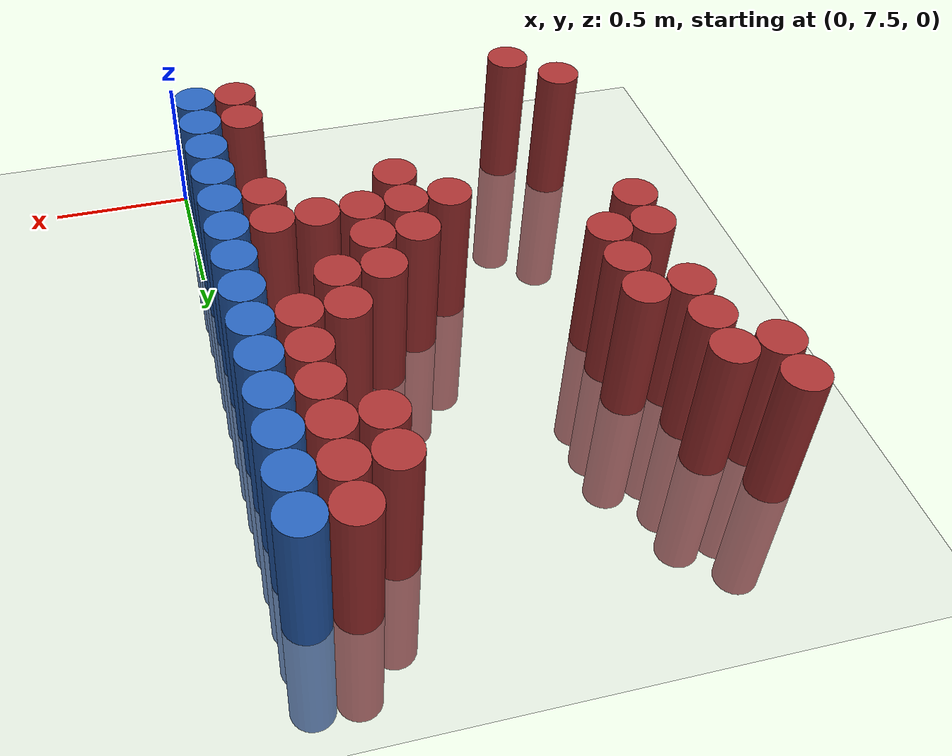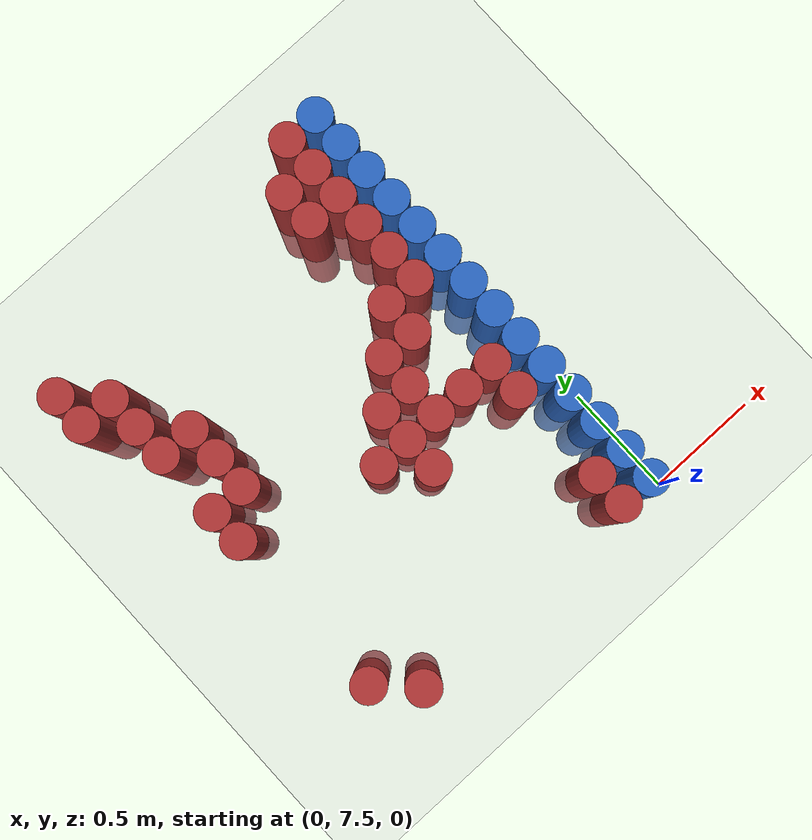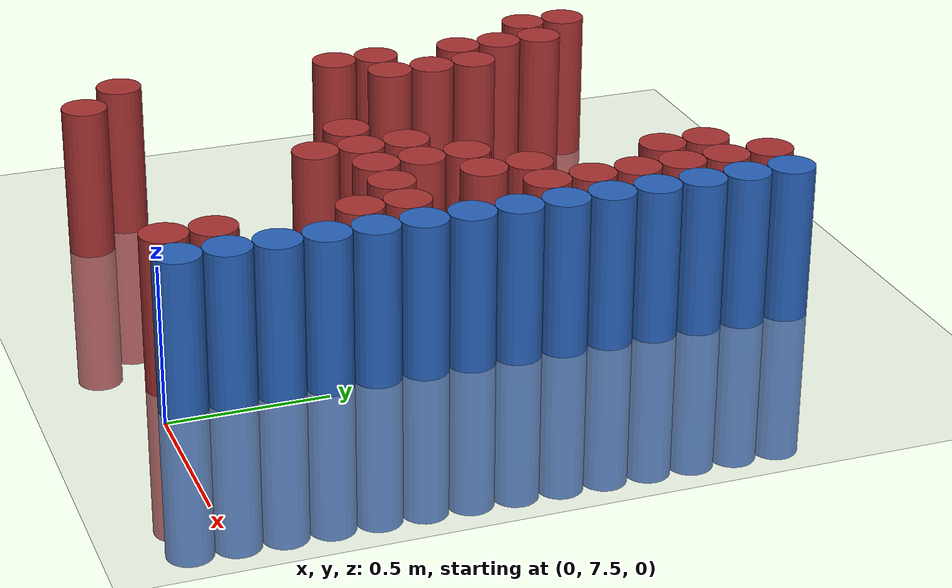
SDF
<sdf version="1.6">
 <world name="default">
  <model name="ground_plane">
   <static>1</static>
   <link name="link">
    <collision name="collision">
     <geometry><plane><normal>0 0 1</normal><size>100 100</size></plane></geometry>
     <surface><friction><ode><mu>100</mu><mu2>50</mu2></ode></friction></surface>
    </collision>
    <visual name="visual">
     <cast_shadows>0</cast_shadows>
     <geometry><plane><normal>0 0 1</normal><size>100 100</size></plane></geometry>
     <material>
      <script><uri>file://media/materials/scripts/gazebo.material</uri><name>Gazebo/Grey</name></script>
     </material>
    </visual>
   </link>
  </model>
  <model name="unit_cylinder_221">
   <static>1</static>
   <pose>-1.575000 9.225000 0.000000 0.000000 0.000000 0.000000</pose>
   <link name="link">
    <inertial>
     <mass>1</mass>
     <inertia><ixx>0.145833</ixx><ixy>0</ixy><ixz>0</ixz><iyy>0.145833</iyy><iyz>0</iyz><izz>0.125</izz></inertia>
    </inertial>
    <collision name="collision">
     <geometry><cylinder><radius>0.075000</radius><length>1</length></cylinder></geometry>
    </collision>
    <visual name="visual">
     <geometry><cylinder><radius>0.075000</radius><length>1</length></cylinder></geometry>
     <material>
      <ambient>0.648000 0.192000 0.192000 1</ambient>
      <diffuse>0.648000 0.192000 0.192000 1</diffuse>
     </material>
     <material>
      <script><name>Gazebo/Grey</name><uri>file://media/materials/scripts/gazebo.material</uri></script>
     </material>
    </visual>
   </link>
  </model>
  <model name="unit_cylinder_222">
   <static>1</static>
   <pose>-1.575000 9.375000 0.000000 0.000000 0.000000 0.000000</pose>
   <link name="link">
    <inertial>
     <mass>1</mass>
     <inertia><ixx>0.145833</ixx><ixy>0</ixy><ixz>0</ixz><iyy>0.145833</iyy><iyz>0</iyz><izz>0.125</izz></inertia>
    </inertial>
    <collision name="collision">
     <geometry><cylinder><radius>0.075000</radius><length>1</length></cylinder></geometry>
    </collision>
    <visual name="visual">
     <geometry><cylinder><radius>0.075000</radius><length>1</length></cylinder></geometry>
     <material>
      <ambient>0.648000 0.192000 0.192000 1</ambient>
      <diffuse>0.648000 0.192000 0.192000 1</diffuse>
     </material>
     <material>
      <script><name>Gazebo/Grey</name><uri>file://media/materials/scripts/gazebo.material</uri></script>
     </material>
    </visual>
   </link>
  </model>
  <model name="unit_cylinder_229">
   <static>1</static>
   <pose>-1.425000 7.725000 0.000000 0.000000 0.000000 0.000000</pose>
   <link name="link">
    <inertial>
     <mass>1</mass>
     <inertia><ixx>0.145833</ixx><ixy>0</ixy><ixz>0</ixz><iyy>0.145833</iyy><iyz>0</iyz><izz>0.125</izz></inertia>
    </inertial>
    <collision name="collision">
     <geometry><cylinder><radius>0.075000</radius><length>1</length></cylinder></geometry>
    </collision>
    <visual name="visual">
     <geometry><cylinder><radius>0.075000</radius><length>1</length></cylinder></geometry>
     <material>
      <ambient>0.648000 0.192000 0.192000 1</ambient>
      <diffuse>0.648000 0.192000 0.192000 1</diffuse>
     </material>
     <material>
      <script><name>Gazebo/Grey</name><uri>file://media/materials/scripts/gazebo.material</uri></script>
     </material>
    </visual>
   </link>
  </model>
  <model name="unit_cylinder_230">
   <static>1</static>
   <pose>-1.425000 8.475000 0.000000 0.000000 0.000000 0.000000</pose>
   <link name="link">
    <inertial>
     <mass>1</mass>
     <inertia><ixx>0.145833</ixx><ixy>0</ixy><ixz>0</ixz><iyy>0.145833</iyy><iyz>0</iyz><izz>0.125</izz></inertia>
    </inertial>
    <collision name="collision">
     <geometry><cylinder><radius>0.075000</radius><length>1</length></cylinder></geometry>
    </collision>
    <visual name="visual">
     <geometry><cylinder><radius>0.075000</radius><length>1</length></cylinder></geometry>
     <material>
      <ambient>0.648000 0.192000 0.192000 1</ambient>
      <diffuse>0.648000 0.192000 0.192000 1</diffuse>
     </material>
     <material>
      <script><name>Gazebo/Grey</name><uri>file://media/materials/scripts/gazebo.material</uri></script>
     </material>
    </visual>
   </link>
  </model>
  <model name="unit_cylinder_231">
   <static>1</static>
   <pose>-1.425000 8.625000 0.000000 0.000000 0.000000 0.000000</pose>
   <link name="link">
    <inertial>
     <mass>1</mass>
     <inertia><ixx>0.145833</ixx><ixy>0</ixy><ixz>0</ixz><iyy>0.145833</iyy><iyz>0</iyz><izz>0.125</izz></inertia>
    </inertial>
    <collision name="collision">
     <geometry><cylinder><radius>0.075000</radius><length>1</length></cylinder></geometry>
    </collision>
    <visual name="visual">
     <geometry><cylinder><radius>0.075000</radius><length>1</length></cylinder></geometry>
     <material>
      <ambient>0.648000 0.192000 0.192000 1</ambient>
      <diffuse>0.648000 0.192000 0.192000 1</diffuse>
     </material>
     <material>
      <script><name>Gazebo/Grey</name><uri>file://media/materials/scripts/gazebo.material</uri></script>
     </material>
    </visual>
   </link>
  </model>
  <model name="unit_cylinder_232">
   <static>1</static>
   <pose>-1.425000 8.925000 0.000000 0.000000 0.000000 0.000000</pose>
   <link name="link">
    <inertial>
     <mass>1</mass>
     <inertia><ixx>0.145833</ixx><ixy>0</ixy><ixz>0</ixz><iyy>0.145833</iyy><iyz>0</iyz><izz>0.125</izz></inertia>
    </inertial>
    <collision name="collision">
     <geometry><cylinder><radius>0.075000</radius><length>1</length></cylinder></geometry>
    </collision>
    <visual name="visual">
     <geometry><cylinder><radius>0.075000</radius><length>1</length></cylinder></geometry>
     <material>
      <ambient>0.648000 0.192000 0.192000 1</ambient>
      <diffuse>0.648000 0.192000 0.192000 1</diffuse>
     </material>
     <material>
      <script><name>Gazebo/Grey</name><uri>file://media/materials/scripts/gazebo.material</uri></script>
     </material>
    </visual>
   </link>
  </model>
  <model name="unit_cylinder_233">
   <static>1</static>
   <pose>-1.425000 9.075000 0.000000 0.000000 0.000000 0.000000</pose>
   <link name="link">
    <inertial>
     <mass>1</mass>
     <inertia><ixx>0.145833</ixx><ixy>0</ixy><ixz>0</ixz><iyy>0.145833</iyy><iyz>0</iyz><izz>0.125</izz></inertia>
    </inertial>
    <collision name="collision">
     <geometry><cylinder><radius>0.075000</radius><length>1</length></cylinder></geometry>
    </collision>
    <visual name="visual">
     <geometry><cylinder><radius>0.075000</radius><length>1</length></cylinder></geometry>
     <material>
      <ambient>0.648000 0.192000 0.192000 1</ambient>
      <diffuse>0.648000 0.192000 0.192000 1</diffuse>
     </material>
     <material>
      <script><name>Gazebo/Grey</name><uri>file://media/materials/scripts/gazebo.material</uri></script>
     </material>
    </visual>
   </link>
  </model>
  <model name="unit_cylinder_234">
   <static>1</static>
   <pose>-1.425000 9.225000 0.000000 0.000000 0.000000 0.000000</pose>
   <link name="link">
    <inertial>
     <mass>1</mass>
     <inertia><ixx>0.145833</ixx><ixy>0</ixy><ixz>0</ixz><iyy>0.145833</iyy><iyz>0</iyz><izz>0.125</izz></inertia>
    </inertial>
    <collision name="collision">
     <geometry><cylinder><radius>0.075000</radius><length>1</length></cylinder></geometry>
    </collision>
    <visual name="visual">
     <geometry><cylinder><radius>0.075000</radius><length>1</length></cylinder></geometry>
     <material>
      <ambient>0.648000 0.192000 0.192000 1</ambient>
      <diffuse>0.648000 0.192000 0.192000 1</diffuse>
     </material>
     <material>
      <script><name>Gazebo/Grey</name><uri>file://media/materials/scripts/gazebo.material</uri></script>
     </material>
    </visual>
   </link>
  </model>
  <model name="unit_cylinder_244">
   <static>1</static>
   <pose>-1.275000 7.575000 0.000000 0.000000 0.000000 0.000000</pose>
   <link name="link">
    <inertial>
     <mass>1</mass>
     <inertia><ixx>0.145833</ixx><ixy>0</ixy><ixz>0</ixz><iyy>0.145833</iyy><iyz>0</iyz><izz>0.125</izz></inertia>
    </inertial>
    <collision name="collision">
     <geometry><cylinder><radius>0.075000</radius><length>1</length></cylinder></geometry>
    </collision>
    <visual name="visual">
     <geometry><cylinder><radius>0.075000</radius><length>1</length></cylinder></geometry>
     <material>
      <ambient>0.648000 0.192000 0.192000 1</ambient>
      <diffuse>0.648000 0.192000 0.192000 1</diffuse>
     </material>
     <material>
      <script><name>Gazebo/Grey</name><uri>file://media/materials/scripts/gazebo.material</uri></script>
     </material>
    </visual>
   </link>
  </model>
  <model name="unit_cylinder_245">
   <static>1</static>
   <pose>-1.275000 8.625000 0.000000 0.000000 0.000000 0.000000</pose>
   <link name="link">
    <inertial>
     <mass>1</mass>
     <inertia><ixx>0.145833</ixx><ixy>0</ixy><ixz>0</ixz><iyy>0.145833</iyy><iyz>0</iyz><izz>0.125</izz></inertia>
    </inertial>
    <collision name="collision">
     <geometry><cylinder><radius>0.075000</radius><length>1</length></cylinder></geometry>
    </collision>
    <visual name="visual">
     <geometry><cylinder><radius>0.075000</radius><length>1</length></cylinder></geometry>
     <material>
      <ambient>0.648000 0.192000 0.192000 1</ambient>
      <diffuse>0.648000 0.192000 0.192000 1</diffuse>
     </material>
     <material>
      <script><name>Gazebo/Grey</name><uri>file://media/materials/scripts/gazebo.material</uri></script>
     </material>
    </visual>
   </link>
  </model>
  <model name="unit_cylinder_246">
   <static>1</static>
   <pose>-1.275000 8.775000 0.000000 0.000000 0.000000 0.000000</pose>
   <link name="link">
    <inertial>
     <mass>1</mass>
     <inertia><ixx>0.145833</ixx><ixy>0</ixy><ixz>0</ixz><iyy>0.145833</iyy><iyz>0</iyz><izz>0.125</izz></inertia>
    </inertial>
    <collision name="collision">
     <geometry><cylinder><radius>0.075000</radius><length>1</length></cylinder></geometry>
    </collision>
    <visual name="visual">
     <geometry><cylinder><radius>0.075000</radius><length>1</length></cylinder></geometry>
     <material>
      <ambient>0.648000 0.192000 0.192000 1</ambient>
      <diffuse>0.648000 0.192000 0.192000 1</diffuse>
     </material>
     <material>
      <script><name>Gazebo/Grey</name><uri>file://media/materials/scripts/gazebo.material</uri></script>
     </material>
    </visual>
   </link>
  </model>
  <model name="unit_cylinder_247">
   <static>1</static>
   <pose>-1.275000 8.925000 0.000000 0.000000 0.000000 0.000000</pose>
   <link name="link">
    <inertial>
     <mass>1</mass>
     <inertia><ixx>0.145833</ixx><ixy>0</ixy><ixz>0</ixz><iyy>0.145833</iyy><iyz>0</iyz><izz>0.125</izz></inertia>
    </inertial>
    <collision name="collision">
     <geometry><cylinder><radius>0.075000</radius><length>1</length></cylinder></geometry>
    </collision>
    <visual name="visual">
     <geometry><cylinder><radius>0.075000</radius><length>1</length></cylinder></geometry>
     <material>
      <ambient>0.648000 0.192000 0.192000 1</ambient>
      <diffuse>0.648000 0.192000 0.192000 1</diffuse>
     </material>
     <material>
      <script><name>Gazebo/Grey</name><uri>file://media/materials/scripts/gazebo.material</uri></script>
     </material>
    </visual>
   </link>
  </model>
  <model name="unit_cylinder_257">
   <static>1</static>
   <pose>-0.825000 8.325000 0.000000 0.000000 0.000000 0.000000</pose>
   <link name="link">
    <inertial>
     <mass>1</mass>
     <inertia><ixx>0.145833</ixx><ixy>0</ixy><ixz>0</ixz><iyy>0.145833</iyy><iyz>0</iyz><izz>0.125</izz></inertia>
    </inertial>
    <collision name="collision">
     <geometry><cylinder><radius>0.075000</radius><length>1</length></cylinder></geometry>
    </collision>
    <visual name="visual">
     <geometry><cylinder><radius>0.075000</radius><length>1</length></cylinder></geometry>
     <material>
      <ambient>0.648000 0.192000 0.192000 1</ambient>
      <diffuse>0.648000 0.192000 0.192000 1</diffuse>
     </material>
     <material>
      <script><name>Gazebo/Grey</name><uri>file://media/materials/scripts/gazebo.material</uri></script>
     </material>
    </visual>
   </link>
  </model>
  <model name="unit_cylinder_260">
   <static>1</static>
   <pose>-0.675000 8.175000 0.000000 0.000000 0.000000 0.000000</pose>
   <link name="link">
    <inertial>
     <mass>1</mass>
     <inertia><ixx>0.145833</ixx><ixy>0</ixy><ixz>0</ixz><iyy>0.145833</iyy><iyz>0</iyz><izz>0.125</izz></inertia>
    </inertial>
    <collision name="collision">
     <geometry><cylinder><radius>0.075000</radius><length>1</length></cylinder></geometry>
    </collision>
    <visual name="visual">
     <geometry><cylinder><radius>0.075000</radius><length>1</length></cylinder></geometry>
     <material>
      <ambient>0.648000 0.192000 0.192000 1</ambient>
      <diffuse>0.648000 0.192000 0.192000 1</diffuse>
     </material>
     <material>
      <script><name>Gazebo/Grey</name><uri>file://media/materials/scripts/gazebo.material</uri></script>
     </material>
    </visual>
   </link>
  </model>
  <model name="unit_cylinder_261">
   <static>1</static>
   <pose>-0.675000 8.325000 0.000000 0.000000 0.000000 0.000000</pose>
   <link name="link">
    <inertial>
     <mass>1</mass>
     <inertia><ixx>0.145833</ixx><ixy>0</ixy><ixz>0</ixz><iyy>0.145833</iyy><iyz>0</iyz><izz>0.125</izz></inertia>
    </inertial>
    <collision name="collision">
     <geometry><cylinder><radius>0.075000</radius><length>1</length></cylinder></geometry>
    </collision>
    <visual name="visual">
     <geometry><cylinder><radius>0.075000</radius><length>1</length></cylinder></geometry>
     <material>
      <ambient>0.648000 0.192000 0.192000 1</ambient>
      <diffuse>0.648000 0.192000 0.192000 1</diffuse>
     </material>
     <material>
      <script><name>Gazebo/Grey</name><uri>file://media/materials/scripts/gazebo.material</uri></script>
     </material>
    </visual>
   </link>
  </model>
  <model name="unit_cylinder_262">
   <static>1</static>
   <pose>-0.675000 8.475000 0.000000 0.000000 0.000000 0.000000</pose>
   <link name="link">
    <inertial>
     <mass>1</mass>
     <inertia><ixx>0.145833</ixx><ixy>0</ixy><ixz>0</ixz><iyy>0.145833</iyy><iyz>0</iyz><izz>0.125</izz></inertia>
    </inertial>
    <collision name="collision">
     <geometry><cylinder><radius>0.075000</radius><length>1</length></cylinder></geometry>
    </collision>
    <visual name="visual">
     <geometry><cylinder><radius>0.075000</radius><length>1</length></cylinder></geometry>
     <material>
      <ambient>0.648000 0.192000 0.192000 1</ambient>
      <diffuse>0.648000 0.192000 0.192000 1</diffuse>
     </material>
     <material>
      <script><name>Gazebo/Grey</name><uri>file://media/materials/scripts/gazebo.material</uri></script>
     </material>
    </visual>
   </link>
  </model>
  <model name="unit_cylinder_267">
   <static>1</static>
   <pose>-0.525000 8.325000 0.000000 0.000000 0.000000 0.000000</pose>
   <link name="link">
    <inertial>
     <mass>1</mass>
     <inertia><ixx>0.145833</ixx><ixy>0</ixy><ixz>0</ixz><iyy>0.145833</iyy><iyz>0</iyz><izz>0.125</izz></inertia>
    </inertial>
    <collision name="collision">
     <geometry><cylinder><radius>0.075000</radius><length>1</length></cylinder></geometry>
    </collision>
    <visual name="visual">
     <geometry><cylinder><radius>0.075000</radius><length>1</length></cylinder></geometry>
     <material>
      <ambient>0.648000 0.192000 0.192000 1</ambient>
      <diffuse>0.648000 0.192000 0.192000 1</diffuse>
     </material>
     <material>
      <script><name>Gazebo/Grey</name><uri>file://media/materials/scripts/gazebo.material</uri></script>
     </material>
    </visual>
   </link>
  </model>
  <model name="unit_cylinder_268">
   <static>1</static>
   <pose>-0.525000 8.475000 0.000000 0.000000 0.000000 0.000000</pose>
   <link name="link">
    <inertial>
     <mass>1</mass>
     <inertia><ixx>0.145833</ixx><ixy>0</ixy><ixz>0</ixz><iyy>0.145833</iyy><iyz>0</iyz><izz>0.125</izz></inertia>
    </inertial>
    <collision name="collision">
     <geometry><cylinder><radius>0.075000</radius><length>1</length></cylinder></geometry>
    </collision>
    <visual name="visual">
     <geometry><cylinder><radius>0.075000</radius><length>1</length></cylinder></geometry>
     <material>
      <ambient>0.648000 0.192000 0.192000 1</ambient>
      <diffuse>0.648000 0.192000 0.192000 1</diffuse>
     </material>
     <material>
      <script><name>Gazebo/Grey</name><uri>file://media/materials/scripts/gazebo.material</uri></script>
     </material>
    </visual>
   </link>
  </model>
  <model name="unit_cylinder_269">
   <static>1</static>
   <pose>-0.525000 8.625000 0.000000 0.000000 0.000000 0.000000</pose>
   <link name="link">
    <inertial>
     <mass>1</mass>
     <inertia><ixx>0.145833</ixx><ixy>0</ixy><ixz>0</ixz><iyy>0.145833</iyy><iyz>0</iyz><izz>0.125</izz></inertia>
    </inertial>
    <collision name="collision">
     <geometry><cylinder><radius>0.075000</radius><length>1</length></cylinder></geometry>
    </collision>
    <visual name="visual">
     <geometry><cylinder><radius>0.075000</radius><length>1</length></cylinder></geometry>
     <material>
      <ambient>0.648000 0.192000 0.192000 1</ambient>
      <diffuse>0.648000 0.192000 0.192000 1</diffuse>
     </material>
     <material>
      <script><name>Gazebo/Grey</name><uri>file://media/materials/scripts/gazebo.material</uri></script>
     </material>
    </visual>
   </link>
  </model>
  <model name="unit_cylinder_277">
   <static>1</static>
   <pose>-0.375000 8.325000 0.000000 0.000000 0.000000 0.000000</pose>
   <link name="link">
    <inertial>
     <mass>1</mass>
     <inertia><ixx>0.145833</ixx><ixy>0</ixy><ixz>0</ixz><iyy>0.145833</iyy><iyz>0</iyz><izz>0.125</izz></inertia>
    </inertial>
    <collision name="collision">
     <geometry><cylinder><radius>0.075000</radius><length>1</length></cylinder></geometry>
    </collision>
    <visual name="visual">
     <geometry><cylinder><radius>0.075000</radius><length>1</length></cylinder></geometry>
     <material>
      <ambient>0.648000 0.192000 0.192000 1</ambient>
      <diffuse>0.648000 0.192000 0.192000 1</diffuse>
     </material>
     <material>
      <script><name>Gazebo/Grey</name><uri>file://media/materials/scripts/gazebo.material</uri></script>
     </material>
    </visual>
   </link>
  </model>
  <model name="unit_cylinder_278">
   <static>1</static>
   <pose>-0.375000 8.625000 0.000000 0.000000 0.000000 0.000000</pose>
   <link name="link">
    <inertial>
     <mass>1</mass>
     <inertia><ixx>0.145833</ixx><ixy>0</ixy><ixz>0</ixz><iyy>0.145833</iyy><iyz>0</iyz><izz>0.125</izz></inertia>
    </inertial>
    <collision name="collision">
     <geometry><cylinder><radius>0.075000</radius><length>1</length></cylinder></geometry>
    </collision>
    <visual name="visual">
     <geometry><cylinder><radius>0.075000</radius><length>1</length></cylinder></geometry>
     <material>
      <ambient>0.648000 0.192000 0.192000 1</ambient>
      <diffuse>0.648000 0.192000 0.192000 1</diffuse>
     </material>
     <material>
      <script><name>Gazebo/Grey</name><uri>file://media/materials/scripts/gazebo.material</uri></script>
     </material>
    </visual>
   </link>
  </model>
  <model name="unit_cylinder_279">
   <static>1</static>
   <pose>-0.375000 8.775000 0.000000 0.000000 0.000000 0.000000</pose>
   <link name="link">
    <inertial>
     <mass>1</mass>
     <inertia><ixx>0.145833</ixx><ixy>0</ixy><ixz>0</ixz><iyy>0.145833</iyy><iyz>0</iyz><izz>0.125</izz></inertia>
    </inertial>
    <collision name="collision">
     <geometry><cylinder><radius>0.075000</radius><length>1</length></cylinder></geometry>
    </collision>
    <visual name="visual">
     <geometry><cylinder><radius>0.075000</radius><length>1</length></cylinder></geometry>
     <material>
      <ambient>0.648000 0.192000 0.192000 1</ambient>
      <diffuse>0.648000 0.192000 0.192000 1</diffuse>
     </material>
     <material>
      <script><name>Gazebo/Grey</name><uri>file://media/materials/scripts/gazebo.material</uri></script>
     </material>
    </visual>
   </link>
  </model>
  <model name="unit_cylinder_280">
   <static>1</static>
   <pose>-0.375000 9.225000 0.000000 0.000000 0.000000 0.000000</pose>
   <link name="link">
    <inertial>
     <mass>1</mass>
     <inertia><ixx>0.145833</ixx><ixy>0</ixy><ixz>0</ixz><iyy>0.145833</iyy><iyz>0</iyz><izz>0.125</izz></inertia>
    </inertial>
    <collision name="collision">
     <geometry><cylinder><radius>0.075000</radius><length>1</length></cylinder></geometry>
    </collision>
    <visual name="visual">
     <geometry><cylinder><radius>0.075000</radius><length>1</length></cylinder></geometry>
     <material>
      <ambient>0.648000 0.192000 0.192000 1</ambient>
      <diffuse>0.648000 0.192000 0.192000 1</diffuse>
     </material>
     <material>
      <script><name>Gazebo/Grey</name><uri>file://media/materials/scripts/gazebo.material</uri></script>
     </material>
    </visual>
   </link>
  </model>
  <model name="unit_cylinder_281">
   <static>1</static>
   <pose>-0.375000 9.375000 0.000000 0.000000 0.000000 0.000000</pose>
   <link name="link">
    <inertial>
     <mass>1</mass>
     <inertia><ixx>0.145833</ixx><ixy>0</ixy><ixz>0</ixz><iyy>0.145833</iyy><iyz>0</iyz><izz>0.125</izz></inertia>
    </inertial>
    <collision name="collision">
     <geometry><cylinder><radius>0.075000</radius><length>1</length></cylinder></geometry>
    </collision>
    <visual name="visual">
     <geometry><cylinder><radius>0.075000</radius><length>1</length></cylinder></geometry>
     <material>
      <ambient>0.648000 0.192000 0.192000 1</ambient>
      <diffuse>0.648000 0.192000 0.192000 1</diffuse>
     </material>
     <material>
      <script><name>Gazebo/Grey</name><uri>file://media/materials/scripts/gazebo.material</uri></script>
     </material>
    </visual>
   </link>
  </model>
  <model name="unit_cylinder_291">
   <static>1</static>
   <pose>-0.225000 7.575000 0.000000 0.000000 0.000000 0.000000</pose>
   <link name="link">
    <inertial>
     <mass>1</mass>
     <inertia><ixx>0.145833</ixx><ixy>0</ixy><ixz>0</ixz><iyy>0.145833</iyy><iyz>0</iyz><izz>0.125</izz></inertia>
    </inertial>
    <collision name="collision">
     <geometry><cylinder><radius>0.075000</radius><length>1</length></cylinder></geometry>
    </collision>
    <visual name="visual">
     <geometry><cylinder><radius>0.075000</radius><length>1</length></cylinder></geometry>
     <material>
      <ambient>0.648000 0.192000 0.192000 1</ambient>
      <diffuse>0.648000 0.192000 0.192000 1</diffuse>
     </material>
     <material>
      <script><name>Gazebo/Grey</name><uri>file://media/materials/scripts/gazebo.material</uri></script>
     </material>
    </visual>
   </link>
  </model>
  <model name="unit_cylinder_292">
   <static>1</static>
   <pose>-0.225000 7.725000 0.000000 0.000000 0.000000 0.000000</pose>
   <link name="link">
    <inertial>
     <mass>1</mass>
     <inertia><ixx>0.145833</ixx><ixy>0</ixy><ixz>0</ixz><iyy>0.145833</iyy><iyz>0</iyz><izz>0.125</izz></inertia>
    </inertial>
    <collision name="collision">
     <geometry><cylinder><radius>0.075000</radius><length>1</length></cylinder></geometry>
    </collision>
    <visual name="visual">
     <geometry><cylinder><radius>0.075000</radius><length>1</length></cylinder></geometry>
     <material>
      <ambient>0.648000 0.192000 0.192000 1</ambient>
      <diffuse>0.648000 0.192000 0.192000 1</diffuse>
     </material>
     <material>
      <script><name>Gazebo/Grey</name><uri>file://media/materials/scripts/gazebo.material</uri></script>
     </material>
    </visual>
   </link>
  </model>
  <model name="unit_cylinder_293">
   <static>1</static>
   <pose>-0.225000 8.175000 0.000000 0.000000 0.000000 0.000000</pose>
   <link name="link">
    <inertial>
     <mass>1</mass>
     <inertia><ixx>0.145833</ixx><ixy>0</ixy><ixz>0</ixz><iyy>0.145833</iyy><iyz>0</iyz><izz>0.125</izz></inertia>
    </inertial>
    <collision name="collision">
     <geometry><cylinder><radius>0.075000</radius><length>1</length></cylinder></geometry>
    </collision>
    <visual name="visual">
     <geometry><cylinder><radius>0.075000</radius><length>1</length></cylinder></geometry>
     <material>
      <ambient>0.648000 0.192000 0.192000 1</ambient>
      <diffuse>0.648000 0.192000 0.192000 1</diffuse>
     </material>
     <material>
      <script><name>Gazebo/Grey</name><uri>file://media/materials/scripts/gazebo.material</uri></script>
     </material>
    </visual>
   </link>
  </model>
  <model name="unit_cylinder_294">
   <static>1</static>
   <pose>-0.225000 8.325000 0.000000 0.000000 0.000000 0.000000</pose>
   <link name="link">
    <inertial>
     <mass>1</mass>
     <inertia><ixx>0.145833</ixx><ixy>0</ixy><ixz>0</ixz><iyy>0.145833</iyy><iyz>0</iyz><izz>0.125</izz></inertia>
    </inertial>
    <collision name="collision">
     <geometry><cylinder><radius>0.075000</radius><length>1</length></cylinder></geometry>
    </collision>
    <visual name="visual">
     <geometry><cylinder><radius>0.075000</radius><length>1</length></cylinder></geometry>
     <material>
      <ambient>0.648000 0.192000 0.192000 1</ambient>
      <diffuse>0.648000 0.192000 0.192000 1</diffuse>
     </material>
     <material>
      <script><name>Gazebo/Grey</name><uri>file://media/materials/scripts/gazebo.material</uri></script>
     </material>
    </visual>
   </link>
  </model>
  <model name="unit_cylinder_295">
   <static>1</static>
   <pose>-0.225000 8.775000 0.000000 0.000000 0.000000 0.000000</pose>
   <link name="link">
    <inertial>
     <mass>1</mass>
     <inertia><ixx>0.145833</ixx><ixy>0</ixy><ixz>0</ixz><iyy>0.145833</iyy><iyz>0</iyz><izz>0.125</izz></inertia>
    </inertial>
    <collision name="collision">
     <geometry><cylinder><radius>0.075000</radius><length>1</length></cylinder></geometry>
    </collision>
    <visual name="visual">
     <geometry><cylinder><radius>0.075000</radius><length>1</length></cylinder></geometry>
     <material>
      <ambient>0.648000 0.192000 0.192000 1</ambient>
      <diffuse>0.648000 0.192000 0.192000 1</diffuse>
     </material>
     <material>
      <script><name>Gazebo/Grey</name><uri>file://media/materials/scripts/gazebo.material</uri></script>
     </material>
    </visual>
   </link>
  </model>
  <model name="unit_cylinder_296">
   <static>1</static>
   <pose>-0.225000 8.925000 0.000000 0.000000 0.000000 0.000000</pose>
   <link name="link">
    <inertial>
     <mass>1</mass>
     <inertia><ixx>0.145833</ixx><ixy>0</ixy><ixz>0</ixz><iyy>0.145833</iyy><iyz>0</iyz><izz>0.125</izz></inertia>
    </inertial>
    <collision name="collision">
     <geometry><cylinder><radius>0.075000</radius><length>1</length></cylinder></geometry>
    </collision>
    <visual name="visual">
     <geometry><cylinder><radius>0.075000</radius><length>1</length></cylinder></geometry>
     <material>
      <ambient>0.648000 0.192000 0.192000 1</ambient>
      <diffuse>0.648000 0.192000 0.192000 1</diffuse>
     </material>
     <material>
      <script><name>Gazebo/Grey</name><uri>file://media/materials/scripts/gazebo.material</uri></script>
     </material>
    </visual>
   </link>
  </model>
  <model name="unit_cylinder_297">
   <static>1</static>
   <pose>-0.225000 9.075000 0.000000 0.000000 0.000000 0.000000</pose>
   <link name="link">
    <inertial>
     <mass>1</mass>
     <inertia><ixx>0.145833</ixx><ixy>0</ixy><ixz>0</ixz><iyy>0.145833</iyy><iyz>0</iyz><izz>0.125</izz></inertia>
    </inertial>
    <collision name="collision">
     <geometry><cylinder><radius>0.075000</radius><length>1</length></cylinder></geometry>
    </collision>
    <visual name="visual">
     <geometry><cylinder><radius>0.075000</radius><length>1</length></cylinder></geometry>
     <material>
      <ambient>0.648000 0.192000 0.192000 1</ambient>
      <diffuse>0.648000 0.192000 0.192000 1</diffuse>
     </material>
     <material>
      <script><name>Gazebo/Grey</name><uri>file://media/materials/scripts/gazebo.material</uri></script>
     </material>
    </visual>
   </link>
  </model>
  <model name="unit_cylinder_298">
   <static>1</static>
   <pose>-0.225000 9.225000 0.000000 0.000000 0.000000 0.000000</pose>
   <link name="link">
    <inertial>
     <mass>1</mass>
     <inertia><ixx>0.145833</ixx><ixy>0</ixy><ixz>0</ixz><iyy>0.145833</iyy><iyz>0</iyz><izz>0.125</izz></inertia>
    </inertial>
    <collision name="collision">
     <geometry><cylinder><radius>0.075000</radius><length>1</length></cylinder></geometry>
    </collision>
    <visual name="visual">
     <geometry><cylinder><radius>0.075000</radius><length>1</length></cylinder></geometry>
     <material>
      <ambient>0.648000 0.192000 0.192000 1</ambient>
      <diffuse>0.648000 0.192000 0.192000 1</diffuse>
     </material>
     <material>
      <script><name>Gazebo/Grey</name><uri>file://media/materials/scripts/gazebo.material</uri></script>
     </material>
    </visual>
   </link>
  </model>
  <model name="unit_cylinder_299">
   <static>1</static>
   <pose>-0.225000 9.375000 0.000000 0.000000 0.000000 0.000000</pose>
   <link name="link">
    <inertial>
     <mass>1</mass>
     <inertia><ixx>0.145833</ixx><ixy>0</ixy><ixz>0</ixz><iyy>0.145833</iyy><iyz>0</iyz><izz>0.125</izz></inertia>
    </inertial>
    <collision name="collision">
     <geometry><cylinder><radius>0.075000</radius><length>1</length></cylinder></geometry>
    </collision>
    <visual name="visual">
     <geometry><cylinder><radius>0.075000</radius><length>1</length></cylinder></geometry>
     <material>
      <ambient>0.648000 0.192000 0.192000 1</ambient>
      <diffuse>0.648000 0.192000 0.192000 1</diffuse>
     </material>
     <material>
      <script><name>Gazebo/Grey</name><uri>file://media/materials/scripts/gazebo.material</uri></script>
     </material>
    </visual>
   </link>
  </model>
  <model name="unit_cylinder_300">
   <static>1</static>
   <pose>-0.225000 9.525000 0.000000 0.000000 0.000000 0.000000</pose>
   <link name="link">
    <inertial>
     <mass>1</mass>
     <inertia><ixx>0.145833</ixx><ixy>0</ixy><ixz>0</ixz><iyy>0.145833</iyy><iyz>0</iyz><izz>0.125</izz></inertia>
    </inertial>
    <collision name="collision">
     <geometry><cylinder><radius>0.075000</radius><length>1</length></cylinder></geometry>
    </collision>
    <visual name="visual">
     <geometry><cylinder><radius>0.075000</radius><length>1</length></cylinder></geometry>
     <material>
      <ambient>0.648000 0.192000 0.192000 1</ambient>
      <diffuse>0.648000 0.192000 0.192000 1</diffuse>
     </material>
     <material>
      <script><name>Gazebo/Grey</name><uri>file://media/materials/scripts/gazebo.material</uri></script>
     </material>
    </visual>
   </link>
  </model>
  <model name="unit_cylinder_317">
   <static>1</static>
   <pose>-0.075000 7.575000 0.000000 0.000000 0.000000 0.000000</pose>
   <link name="link">
    <inertial>
     <mass>1</mass>
     <inertia><ixx>0.145833</ixx><ixy>0</ixy><ixz>0</ixz><iyy>0.145833</iyy><iyz>0</iyz><izz>0.125</izz></inertia>
    </inertial>
    <collision name="collision">
     <geometry><cylinder><radius>0.075000</radius><length>1</length></cylinder></geometry>
    </collision>
    <visual name="visual">
     <geometry><cylinder><radius>0.075000</radius><length>1</length></cylinder></geometry>
     <material>
      <ambient>0.152000 0.379000 0.720000 1</ambient>
      <diffuse>0.152000 0.379000 0.720000 1</diffuse>
     </material>
     <material>
      <script><name>Gazebo/Grey</name><uri>file://media/materials/scripts/gazebo.material</uri></script>
     </material>
    </visual>
   </link>
  </model>
  <model name="unit_cylinder_318">
   <static>1</static>
   <pose>-0.075000 7.725000 0.000000 0.000000 0.000000 0.000000</pose>
   <link name="link">
    <inertial>
     <mass>1</mass>
     <inertia><ixx>0.145833</ixx><ixy>0</ixy><ixz>0</ixz><iyy>0.145833</iyy><iyz>0</iyz><izz>0.125</izz></inertia>
    </inertial>
    <collision name="collision">
     <geometry><cylinder><radius>0.075000</radius><length>1</length></cylinder></geometry>
    </collision>
    <visual name="visual">
     <geometry><cylinder><radius>0.075000</radius><length>1</length></cylinder></geometry>
     <material>
      <ambient>0.152000 0.379000 0.720000 1</ambient>
      <diffuse>0.152000 0.379000 0.720000 1</diffuse>
     </material>
     <material>
      <script><name>Gazebo/Grey</name><uri>file://media/materials/scripts/gazebo.material</uri></script>
     </material>
    </visual>
   </link>
  </model>
  <model name="unit_cylinder_319">
   <static>1</static>
   <pose>-0.075000 7.875000 0.000000 0.000000 0.000000 0.000000</pose>
   <link name="link">
    <inertial>
     <mass>1</mass>
     <inertia><ixx>0.145833</ixx><ixy>0</ixy><ixz>0</ixz><iyy>0.145833</iyy><iyz>0</iyz><izz>0.125</izz></inertia>
    </inertial>
    <collision name="collision">
     <geometry><cylinder><radius>0.075000</radius><length>1</length></cylinder></geometry>
    </collision>
    <visual name="visual">
     <geometry><cylinder><radius>0.075000</radius><length>1</length></cylinder></geometry>
     <material>
      <ambient>0.152000 0.379000 0.720000 1</ambient>
      <diffuse>0.152000 0.379000 0.720000 1</diffuse>
     </material>
     <material>
      <script><name>Gazebo/Grey</name><uri>file://media/materials/scripts/gazebo.material</uri></script>
     </material>
    </visual>
   </link>
  </model>
  <model name="unit_cylinder_320">
   <static>1</static>
   <pose>-0.075000 8.025000 0.000000 0.000000 0.000000 0.000000</pose>
   <link name="link">
    <inertial>
     <mass>1</mass>
     <inertia><ixx>0.145833</ixx><ixy>0</ixy><ixz>0</ixz><iyy>0.145833</iyy><iyz>0</iyz><izz>0.125</izz></inertia>
    </inertial>
    <collision name="collision">
     <geometry><cylinder><radius>0.075000</radius><length>1</length></cylinder></geometry>
    </collision>
    <visual name="visual">
     <geometry><cylinder><radius>0.075000</radius><length>1</length></cylinder></geometry>
     <material>
      <ambient>0.152000 0.379000 0.720000 1</ambient>
      <diffuse>0.152000 0.379000 0.720000 1</diffuse>
     </material>
     <material>
      <script><name>Gazebo/Grey</name><uri>file://media/materials/scripts/gazebo.material</uri></script>
     </material>
    </visual>
   </link>
  </model>
  <model name="unit_cylinder_321">
   <static>1</static>
   <pose>-0.075000 8.175000 0.000000 0.000000 0.000000 0.000000</pose>
   <link name="link">
    <inertial>
     <mass>1</mass>
     <inertia><ixx>0.145833</ixx><ixy>0</ixy><ixz>0</ixz><iyy>0.145833</iyy><iyz>0</iyz><izz>0.125</izz></inertia>
    </inertial>
    <collision name="collision">
     <geometry><cylinder><radius>0.075000</radius><length>1</length></cylinder></geometry>
    </collision>
    <visual name="visual">
     <geometry><cylinder><radius>0.075000</radius><length>1</length></cylinder></geometry>
     <material>
      <ambient>0.152000 0.379000 0.720000 1</ambient>
      <diffuse>0.152000 0.379000 0.720000 1</diffuse>
     </material>
     <material>
      <script><name>Gazebo/Grey</name><uri>file://media/materials/scripts/gazebo.material</uri></script>
     </material>
    </visual>
   </link>
  </model>
  <model name="unit_cylinder_322">
   <static>1</static>
   <pose>-0.075000 8.325000 0.000000 0.000000 0.000000 0.000000</pose>
   <link name="link">
    <inertial>
     <mass>1</mass>
     <inertia><ixx>0.145833</ixx><ixy>0</ixy><ixz>0</ixz><iyy>0.145833</iyy><iyz>0</iyz><izz>0.125</izz></inertia>
    </inertial>
    <collision name="collision">
     <geometry><cylinder><radius>0.075000</radius><length>1</length></cylinder></geometry>
    </collision>
    <visual name="visual">
     <geometry><cylinder><radius>0.075000</radius><length>1</length></cylinder></geometry>
     <material>
      <ambient>0.152000 0.379000 0.720000 1</ambient>
      <diffuse>0.152000 0.379000 0.720000 1</diffuse>
     </material>
     <material>
      <script><name>Gazebo/Grey</name><uri>file://media/materials/scripts/gazebo.material</uri></script>
     </material>
    </visual>
   </link>
  </model>
  <model name="unit_cylinder_323">
   <static>1</static>
   <pose>-0.075000 8.475000 0.000000 0.000000 0.000000 0.000000</pose>
   <link name="link">
    <inertial>
     <mass>1</mass>
     <inertia><ixx>0.145833</ixx><ixy>0</ixy><ixz>0</ixz><iyy>0.145833</iyy><iyz>0</iyz><izz>0.125</izz></inertia>
    </inertial>
    <collision name="collision">
     <geometry><cylinder><radius>0.075000</radius><length>1</length></cylinder></geometry>
    </collision>
    <visual name="visual">
     <geometry><cylinder><radius>0.075000</radius><length>1</length></cylinder></geometry>
     <material>
      <ambient>0.152000 0.379000 0.720000 1</ambient>
      <diffuse>0.152000 0.379000 0.720000 1</diffuse>
     </material>
     <material>
      <script><name>Gazebo/Grey</name><uri>file://media/materials/scripts/gazebo.material</uri></script>
     </material>
    </visual>
   </link>
  </model>
  <model name="unit_cylinder_324">
   <static>1</static>
   <pose>-0.075000 8.625000 0.000000 0.000000 0.000000 0.000000</pose>
   <link name="link">
    <inertial>
     <mass>1</mass>
     <inertia><ixx>0.145833</ixx><ixy>0</ixy><ixz>0</ixz><iyy>0.145833</iyy><iyz>0</iyz><izz>0.125</izz></inertia>
    </inertial>
    <collision name="collision">
     <geometry><cylinder><radius>0.075000</radius><length>1</length></cylinder></geometry>
    </collision>
    <visual name="visual">
     <geometry><cylinder><radius>0.075000</radius><length>1</length></cylinder></geometry>
     <material>
      <ambient>0.152000 0.379000 0.720000 1</ambient>
      <diffuse>0.152000 0.379000 0.720000 1</diffuse>
     </material>
     <material>
      <script><name>Gazebo/Grey</name><uri>file://media/materials/scripts/gazebo.material</uri></script>
     </material>
    </visual>
   </link>
  </model>
  <model name="unit_cylinder_325">
   <static>1</static>
   <pose>-0.075000 8.775000 0.000000 0.000000 0.000000 0.000000</pose>
   <link name="link">
    <inertial>
     <mass>1</mass>
     <inertia><ixx>0.145833</ixx><ixy>0</ixy><ixz>0</ixz><iyy>0.145833</iyy><iyz>0</iyz><izz>0.125</izz></inertia>
    </inertial>
    <collision name="collision">
     <geometry><cylinder><radius>0.075000</radius><length>1</length></cylinder></geometry>
    </collision>
    <visual name="visual">
     <geometry><cylinder><radius>0.075000</radius><length>1</length></cylinder></geometry>
     <material>
      <ambient>0.152000 0.379000 0.720000 1</ambient>
      <diffuse>0.152000 0.379000 0.720000 1</diffuse>
     </material>
     <material>
      <script><name>Gazebo/Grey</name><uri>file://media/materials/scripts/gazebo.material</uri></script>
     </material>
    </visual>
   </link>
  </model>
  <model name="unit_cylinder_326">
   <static>1</static>
   <pose>-0.075000 8.925000 0.000000 0.000000 0.000000 0.000000</pose>
   <link name="link">
    <inertial>
     <mass>1</mass>
     <inertia><ixx>0.145833</ixx><ixy>0</ixy><ixz>0</ixz><iyy>0.145833</iyy><iyz>0</iyz><izz>0.125</izz></inertia>
    </inertial>
    <collision name="collision">
     <geometry><cylinder><radius>0.075000</radius><length>1</length></cylinder></geometry>
    </collision>
    <visual name="visual">
     <geometry><cylinder><radius>0.075000</radius><length>1</length></cylinder></geometry>
     <material>
      <ambient>0.152000 0.379000 0.720000 1</ambient>
      <diffuse>0.152000 0.379000 0.720000 1</diffuse>
     </material>
     <material>
      <script><name>Gazebo/Grey</name><uri>file://media/materials/scripts/gazebo.material</uri></script>
     </material>
    </visual>
   </link>
  </model>
  <model name="unit_cylinder_327">
   <static>1</static>
   <pose>-0.075000 9.075000 0.000000 0.000000 0.000000 0.000000</pose>
   <link name="link">
    <inertial>
     <mass>1</mass>
     <inertia><ixx>0.145833</ixx><ixy>0</ixy><ixz>0</ixz><iyy>0.145833</iyy><iyz>0</iyz><izz>0.125</izz></inertia>
    </inertial>
    <collision name="collision">
     <geometry><cylinder><radius>0.075000</radius><length>1</length></cylinder></geometry>
    </collision>
    <visual name="visual">
     <geometry><cylinder><radius>0.075000</radius><length>1</length></cylinder></geometry>
     <material>
      <ambient>0.152000 0.379000 0.720000 1</ambient>
      <diffuse>0.152000 0.379000 0.720000 1</diffuse>
     </material>
     <material>
      <script><name>Gazebo/Grey</name><uri>file://media/materials/scripts/gazebo.material</uri></script>
     </material>
    </visual>
   </link>
  </model>
  <model name="unit_cylinder_328">
   <static>1</static>
   <pose>-0.075000 9.225000 0.000000 0.000000 0.000000 0.000000</pose>
   <link name="link">
    <inertial>
     <mass>1</mass>
     <inertia><ixx>0.145833</ixx><ixy>0</ixy><ixz>0</ixz><iyy>0.145833</iyy><iyz>0</iyz><izz>0.125</izz></inertia>
    </inertial>
    <collision name="collision">
     <geometry><cylinder><radius>0.075000</radius><length>1</length></cylinder></geometry>
    </collision>
    <visual name="visual">
     <geometry><cylinder><radius>0.075000</radius><length>1</length></cylinder></geometry>
     <material>
      <ambient>0.152000 0.379000 0.720000 1</ambient>
      <diffuse>0.152000 0.379000 0.720000 1</diffuse>
     </material>
     <material>
      <script><name>Gazebo/Grey</name><uri>file://media/materials/scripts/gazebo.material</uri></script>
     </material>
    </visual>
   </link>
  </model>
  <model name="unit_cylinder_329">
   <static>1</static>
   <pose>-0.075000 9.375000 0.000000 0.000000 0.000000 0.000000</pose>
   <link name="link">
    <inertial>
     <mass>1</mass>
     <inertia><ixx>0.145833</ixx><ixy>0</ixy><ixz>0</ixz><iyy>0.145833</iyy><iyz>0</iyz><izz>0.125</izz></inertia>
    </inertial>
    <collision name="collision">
     <geometry><cylinder><radius>0.075000</radius><length>1</length></cylinder></geometry>
    </collision>
    <visual name="visual">
     <geometry><cylinder><radius>0.075000</radius><length>1</length></cylinder></geometry>
     <material>
      <ambient>0.152000 0.379000 0.720000 1</ambient>
      <diffuse>0.152000 0.379000 0.720000 1</diffuse>
     </material>
     <material>
      <script><name>Gazebo/Grey</name><uri>file://media/materials/scripts/gazebo.material</uri></script>
     </material>
    </visual>
   </link>
  </model>
  <model name="unit_cylinder_330">
   <static>1</static>
   <pose>-0.075000 9.525000 0.000000 0.000000 0.000000 0.000000</pose>
   <link name="link">
    <inertial>
     <mass>1</mass>
     <inertia><ixx>0.145833</ixx><ixy>0</ixy><ixz>0</ixz><iyy>0.145833</iyy><iyz>0</iyz><izz>0.125</izz></inertia>
    </inertial>
    <collision name="collision">
     <geometry><cylinder><radius>0.075000</radius><length>1</length></cylinder></geometry>
    </collision>
    <visual name="visual">
     <geometry><cylinder><radius>0.075000</radius><length>1</length></cylinder></geometry>
     <material>
      <ambient>0.152000 0.379000 0.720000 1</ambient>
      <diffuse>0.152000 0.379000 0.720000 1</diffuse>
     </material>
     <material>
      <script><name>Gazebo/Grey</name><uri>file://media/materials/scripts/gazebo.material</uri></script>
     </material>
    </visual>
   </link>
  </model>
 </world>
</sdf>
